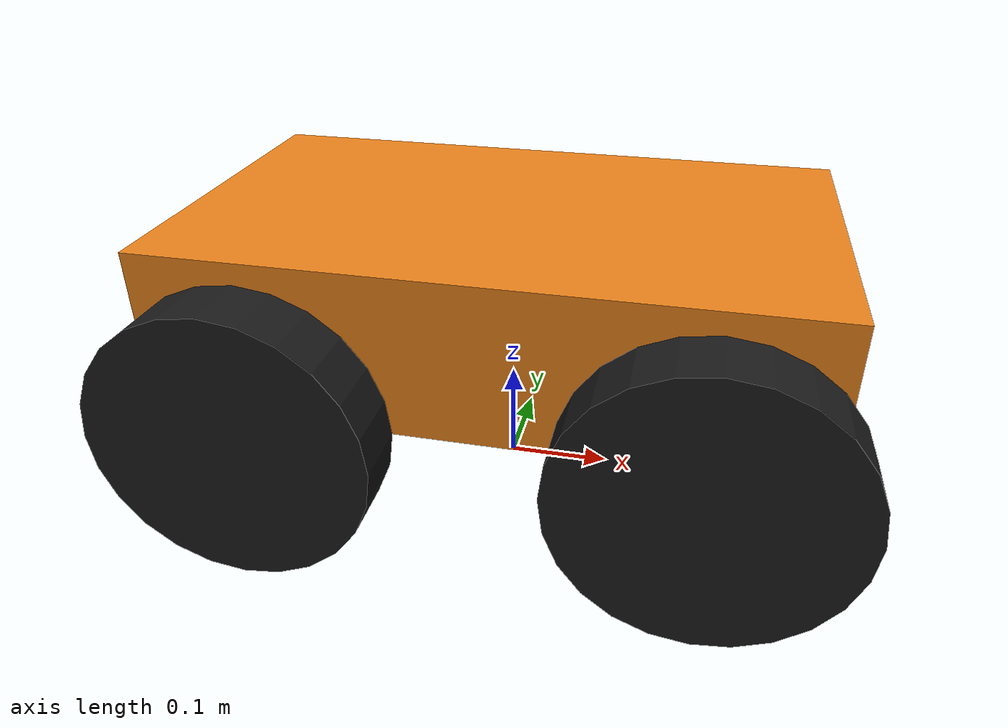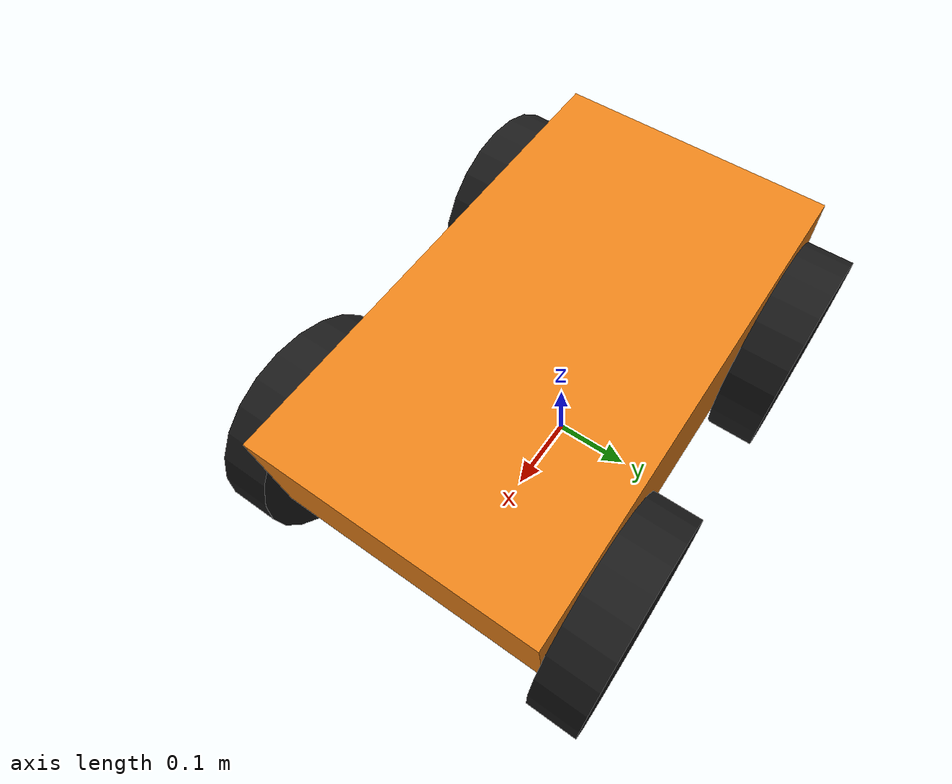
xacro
<?xml version="1.0"?>
<robot name="beach_robot" xmlns:xacro="http://www.ros.org/wiki/xacro">

  <xacro:property name="chassis_length" value="0.60"/>
  <xacro:property name="chassis_width"  value="0.35"/>
  <xacro:property name="chassis_height" value="0.15"/>
  <xacro:property name="chassis_mass"   value="20.0"/>

  <xacro:property name="wheel_radius"    value="0.13"/>
  <xacro:property name="wheel_thickness" value="0.06"/>
  <xacro:property name="wheel_mass"      value="1.5"/>

  <xacro:property name="wheelbase_x" value="0.20"/>
  <xacro:property name="track_y"     value="${chassis_width/2 + wheel_thickness/2}"/>

  <xacro:macro name="box_inertia" params="m x y z">
    <inertial>
      <mass value="${m}"/>
      <inertia
        ixx="${m*(y*y+z*z)/12}" ixy="0" ixz="0"
        iyy="${m*(x*x+z*z)/12}" iyz="0"
        izz="${m*(x*x+y*y)/12}"/>
    </inertial>
  </xacro:macro>

  <xacro:macro name="cylinder_inertia" params="m r h">
    <inertial>
      <mass value="${m}"/>
      <inertia
        ixx="${m*(3*r*r+h*h)/12}" ixy="0" ixz="0"
        iyy="${m*(3*r*r+h*h)/12}" iyz="0"
        izz="${m*r*r/2}"/>
    </inertial>
  </xacro:macro>

  <xacro:macro name="wheel" params="name x y">
    <link name="${name}_link">
      <visual>
        <origin xyz="0 0 0" rpy="${pi/2} 0 0"/>
        <geometry>
          <cylinder radius="${wheel_radius}" length="${wheel_thickness}"/>
        </geometry>
        <material name="black"><color rgba="0.1 0.1 0.1 1"/></material>
      </visual>
      <collision>
        <origin xyz="0 0 0" rpy="${pi/2} 0 0"/>
        <geometry>
          <cylinder radius="${wheel_radius}" length="${wheel_thickness}"/>
        </geometry>
      </collision>
      <xacro:cylinder_inertia m="${wheel_mass}" r="${wheel_radius}" h="${wheel_thickness}"/>
    </link>

    <joint name="${name}_joint" type="continuous">
      <parent link="base_link"/>
      <child link="${name}_link"/>
      <origin xyz="${x} ${y} 0" rpy="0 0 0"/>
      <axis xyz="0 1 0"/>
      <limit effort="100" velocity="20"/>
    </joint>
  </xacro:macro>

  <link name="base_footprint"/>

  <joint name="base_footprint_joint" type="fixed">
    <parent link="base_footprint"/>
    <child link="base_link"/>
    <origin xyz="0 0 ${wheel_radius}" rpy="0 0 0"/>
  </joint>

  <link name="base_link">
    <visual>
      <origin xyz="0 0 ${chassis_height/2}" rpy="0 0 0"/>
      <geometry>
        <box size="${chassis_length} ${chassis_width} ${chassis_height}"/>
      </geometry>
      <material name="orange"><color rgba="0.9 0.5 0.1 1"/></material>
    </visual>
    <collision>
      <origin xyz="0 0 ${chassis_height/2}" rpy="0 0 0"/>
      <geometry>
        <box size="${chassis_length} ${chassis_width} ${chassis_height}"/>
      </geometry>
    </collision>
    <xacro:box_inertia m="${chassis_mass}" x="${chassis_length}" y="${chassis_width}" z="${chassis_height}"/>
  </link>

  <xacro:wheel name="front_left"  x=" ${wheelbase_x}" y=" ${track_y}"/>
  <xacro:wheel name="front_right" x=" ${wheelbase_x}" y="-${track_y}"/>
  <xacro:wheel name="rear_left"   x="-${wheelbase_x}" y=" ${track_y}"/>
  <xacro:wheel name="rear_right"  x="-${wheelbase_x}" y="-${track_y}"/>

  <link name="imu_link">
    <xacro:box_inertia m="0.01" x="0.01" y="0.01" z="0.01"/>
  </link>
  <joint name="imu_joint" type="fixed">
    <parent link="base_link"/>
    <child link="imu_link"/>
    <origin xyz="0 0 ${chassis_height/2}" rpy="0 0 0"/>
  </joint>

  <link name="gps_link">
    <xacro:box_inertia m="0.01" x="0.01" y="0.01" z="0.01"/>
  </link>
  <joint name="gps_joint" type="fixed">
    <parent link="base_link"/>
    <child link="gps_link"/>
    <origin xyz="0 0 ${chassis_height+0.02}" rpy="0 0 0"/>
  </joint>

  <xacro:include filename="$(find beach_robot_description)/urdf/gazebo.xacro"/>

</robot>
